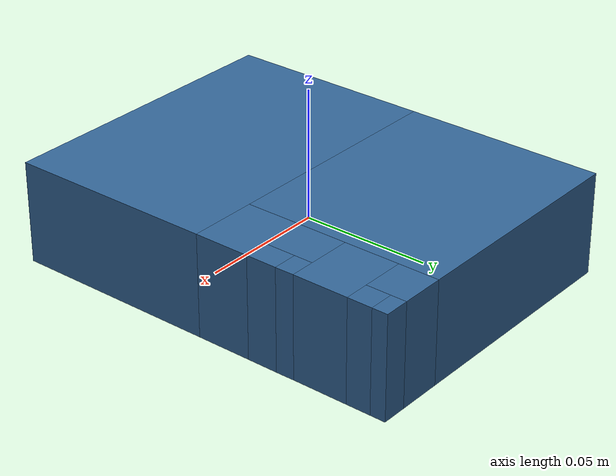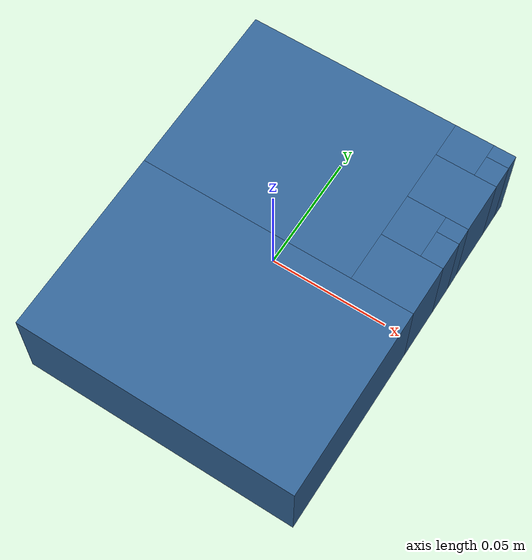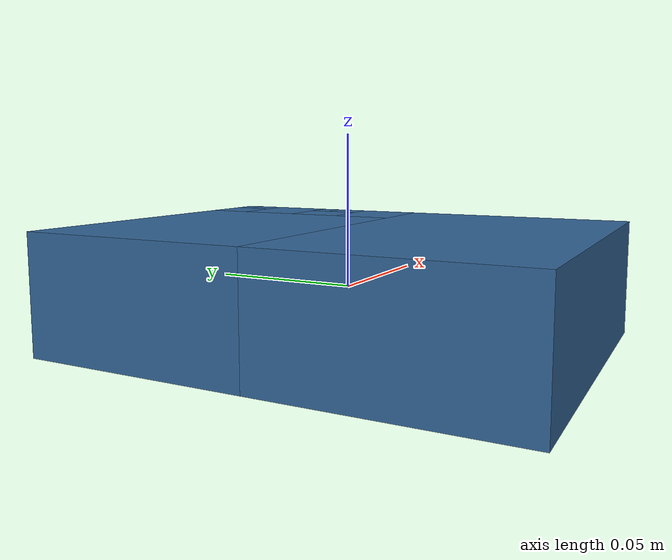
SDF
<?xml version='1.0' encoding='UTF-8'?>
<!-- This SDF was autogenerated by obj_to_drake_sdf.py -->
<sdf version="1.7">
  <model name="block">
    <link name="block">
      <inertial>
        <pose>0 0 0 0 0 0</pose>
        <mass>0.2</mass>
        <inertia>
          <ixx>0.00045332916</ixx>
          <iyy>0.00026666038</iyy>
          <izz>0.00066665621</izz>
          <ixy>-4.7469485e-09</ixy>
          <ixz>6.8932795e-21</ixz>
          <iyz>-0</iyz>
        </inertia>
      </inertial>
      <visual name="convex_0">
        <pose>0 0 0 0 0 0</pose>
        <geometry>
          <mesh>
            <uri>block_convex_0.obj</uri>
          </mesh>
        </geometry>
        <material>
          <diffuse>0.19607843137254902 0.39215686274509803 0.5882352941176471 1</diffuse>
        </material>
      </visual>
      <collision name="convex_0_volume">
        <pose>0 0 0 0 0 0</pose>
        <geometry>
          <mesh>
            <uri>block_convex_0.obj</uri>
          </mesh>
        </geometry>
        <drake:proximity_properties xmlns:drake="uri:drake">
          <drake:compliant_hydroelastic/>
          <drake:hydroelastic_modulus> 3.0e7 </drake:hydroelastic_modulus>
          <drake:mesh_resolution_hint> 0.02 </drake:mesh_resolution_hint>
          <drake:hunt_crossley_dissipation>10</drake:hunt_crossley_dissipation>
          <drake:mu_dynamic>0.3</drake:mu_dynamic>
        </drake:proximity_properties>
      </collision>
      <visual name="convex_1">
        <pose>0 0 0 0 0 0</pose>
        <geometry>
          <mesh>
            <uri>block_convex_1.obj</uri>
          </mesh>
        </geometry>
        <material>
          <diffuse>0.19607843137254902 0.39215686274509803 0.5882352941176471 1</diffuse>
        </material>
      </visual>
      <collision name="convex_1_volume">
        <pose>0 0 0 0 0 0</pose>
        <geometry>
          <mesh>
            <uri>block_convex_1.obj</uri>
          </mesh>
        </geometry>
        <drake:proximity_properties xmlns:drake="uri:drake">
          <drake:compliant_hydroelastic/>
          <drake:hydroelastic_modulus> 3.0e7 </drake:hydroelastic_modulus>
          <drake:mesh_resolution_hint> 0.02 </drake:mesh_resolution_hint>
          <drake:hunt_crossley_dissipation>10</drake:hunt_crossley_dissipation>
          <drake:mu_dynamic>0.3</drake:mu_dynamic>
        </drake:proximity_properties>
      </collision>
      <visual name="convex_2">
        <pose>0 0 0 0 0 0</pose>
        <geometry>
          <mesh>
            <uri>block_convex_2.obj</uri>
          </mesh>
        </geometry>
        <material>
          <diffuse>0.19607843137254902 0.39215686274509803 0.5882352941176471 1</diffuse>
        </material>
      </visual>
      <collision name="convex_2_volume">
        <pose>0 0 0 0 0 0</pose>
        <geometry>
          <mesh>
            <uri>block_convex_2.obj</uri>
          </mesh>
        </geometry>
        <drake:proximity_properties xmlns:drake="uri:drake">
          <drake:compliant_hydroelastic/>
          <drake:hydroelastic_modulus> 3.0e7 </drake:hydroelastic_modulus>
          <drake:mesh_resolution_hint> 0.02 </drake:mesh_resolution_hint>
          <drake:hunt_crossley_dissipation>10</drake:hunt_crossley_dissipation>
          <drake:mu_dynamic>0.3</drake:mu_dynamic>
        </drake:proximity_properties>
      </collision>
      <visual name="convex_3">
        <pose>0 0 0 0 0 0</pose>
        <geometry>
          <mesh>
            <uri>block_convex_3.obj</uri>
          </mesh>
        </geometry>
        <material>
          <diffuse>0.19607843137254902 0.39215686274509803 0.5882352941176471 1</diffuse>
        </material>
      </visual>
      <collision name="convex_3_volume">
        <pose>0 0 0 0 0 0</pose>
        <geometry>
          <mesh>
            <uri>block_convex_3.obj</uri>
          </mesh>
        </geometry>
        <drake:proximity_properties xmlns:drake="uri:drake">
          <drake:compliant_hydroelastic/>
          <drake:hydroelastic_modulus> 3.0e7 </drake:hydroelastic_modulus>
          <drake:mesh_resolution_hint> 0.02 </drake:mesh_resolution_hint>
          <drake:hunt_crossley_dissipation>10</drake:hunt_crossley_dissipation>
          <drake:mu_dynamic>0.3</drake:mu_dynamic>
        </drake:proximity_properties>
      </collision>
      <visual name="convex_4">
        <pose>0 0 0 0 0 0</pose>
        <geometry>
          <mesh>
            <uri>block_convex_4.obj</uri>
          </mesh>
        </geometry>
        <material>
          <diffuse>0.19607843137254902 0.39215686274509803 0.5882352941176471 1</diffuse>
        </material>
      </visual>
      <collision name="convex_4_volume">
        <pose>0 0 0 0 0 0</pose>
        <geometry>
          <mesh>
            <uri>block_convex_4.obj</uri>
          </mesh>
        </geometry>
        <drake:proximity_properties xmlns:drake="uri:drake">
          <drake:compliant_hydroelastic/>
          <drake:hydroelastic_modulus> 3.0e7 </drake:hydroelastic_modulus>
          <drake:mesh_resolution_hint> 0.02 </drake:mesh_resolution_hint>
          <drake:hunt_crossley_dissipation>10</drake:hunt_crossley_dissipation>
          <drake:mu_dynamic>0.3</drake:mu_dynamic>
        </drake:proximity_properties>
      </collision>
      <visual name="convex_5">
        <pose>0 0 0 0 0 0</pose>
        <geometry>
          <mesh>
            <uri>block_convex_5.obj</uri>
          </mesh>
        </geometry>
        <material>
          <diffuse>0.19607843137254902 0.39215686274509803 0.5882352941176471 1</diffuse>
        </material>
      </visual>
      <collision name="convex_5_volume">
        <pose>0 0 0 0 0 0</pose>
        <geometry>
          <mesh>
            <uri>block_convex_5.obj</uri>
          </mesh>
        </geometry>
        <drake:proximity_properties xmlns:drake="uri:drake">
          <drake:compliant_hydroelastic/>
          <drake:hydroelastic_modulus> 3.0e7 </drake:hydroelastic_modulus>
          <drake:mesh_resolution_hint> 0.02 </drake:mesh_resolution_hint>
          <drake:hunt_crossley_dissipation>10</drake:hunt_crossley_dissipation>
          <drake:mu_dynamic>0.3</drake:mu_dynamic>
        </drake:proximity_properties>
      </collision>
      <visual name="convex_6">
        <pose>0 0 0 0 0 0</pose>
        <geometry>
          <mesh>
            <uri>block_convex_6.obj</uri>
          </mesh>
        </geometry>
        <material>
          <diffuse>0.19607843137254902 0.39215686274509803 0.5882352941176471 1</diffuse>
        </material>
      </visual>
      <collision name="convex_6_volume">
        <pose>0 0 0 0 0 0</pose>
        <geometry>
          <mesh>
            <uri>block_convex_6.obj</uri>
          </mesh>
        </geometry>
        <drake:proximity_properties xmlns:drake="uri:drake">
          <drake:compliant_hydroelastic/>
          <drake:hydroelastic_modulus> 3.0e7 </drake:hydroelastic_modulus>
          <drake:mesh_resolution_hint> 0.02 </drake:mesh_resolution_hint>
          <drake:hunt_crossley_dissipation>10</drake:hunt_crossley_dissipation>
          <drake:mu_dynamic>0.3</drake:mu_dynamic>
        </drake:proximity_properties>
      </collision>
      <visual name="convex_7">
        <pose>0 0 0 0 0 0</pose>
        <geometry>
          <mesh>
            <uri>block_convex_7.obj</uri>
          </mesh>
        </geometry>
        <material>
          <diffuse>0.19607843137254902 0.39215686274509803 0.5882352941176471 1</diffuse>
        </material>
      </visual>
      <collision name="convex_7_volume">
        <pose>0 0 0 0 0 0</pose>
        <geometry>
          <mesh>
            <uri>block_convex_7.obj</uri>
          </mesh>
        </geometry>
        <drake:proximity_properties xmlns:drake="uri:drake">
          <drake:compliant_hydroelastic/>
          <drake:hydroelastic_modulus> 3.0e7 </drake:hydroelastic_modulus>
          <drake:mesh_resolution_hint> 0.02 </drake:mesh_resolution_hint>
          <drake:hunt_crossley_dissipation>10</drake:hunt_crossley_dissipation>
          <drake:mu_dynamic>0.3</drake:mu_dynamic>
        </drake:proximity_properties>
      </collision>
      <visual name="convex_8">
        <pose>0 0 0 0 0 0</pose>
        <geometry>
          <mesh>
            <uri>block_convex_8.obj</uri>
          </mesh>
        </geometry>
        <material>
          <diffuse>0.19607843137254902 0.39215686274509803 0.5882352941176471 1</diffuse>
        </material>
      </visual>
      <collision name="convex_8_volume">
        <pose>0 0 0 0 0 0</pose>
        <geometry>
          <mesh>
            <uri>block_convex_8.obj</uri>
          </mesh>
        </geometry>
        <drake:proximity_properties xmlns:drake="uri:drake">
          <drake:compliant_hydroelastic/>
          <drake:hydroelastic_modulus> 3.0e7 </drake:hydroelastic_modulus>
          <drake:mesh_resolution_hint> 0.02 </drake:mesh_resolution_hint>
          <drake:hunt_crossley_dissipation>10</drake:hunt_crossley_dissipation>
          <drake:mu_dynamic>0.3</drake:mu_dynamic>
        </drake:proximity_properties>
      </collision>
      <visual name="convex_9">
        <pose>0 0 0 0 0 0</pose>
        <geometry>
          <mesh>
            <uri>block_convex_9.obj</uri>
          </mesh>
        </geometry>
        <material>
          <diffuse>0.19607843137254902 0.39215686274509803 0.5882352941176471 1</diffuse>
        </material>
      </visual>
      <collision name="convex_9_volume">
        <pose>0 0 0 0 0 0</pose>
        <geometry>
          <mesh>
            <uri>block_convex_9.obj</uri>
          </mesh>
        </geometry>
        <drake:proximity_properties xmlns:drake="uri:drake">
          <drake:compliant_hydroelastic/>
          <drake:hydroelastic_modulus> 3.0e7 </drake:hydroelastic_modulus>
          <drake:mesh_resolution_hint> 0.02 </drake:mesh_resolution_hint>
          <drake:hunt_crossley_dissipation>10</drake:hunt_crossley_dissipation>
          <drake:mu_dynamic>0.3</drake:mu_dynamic>
        </drake:proximity_properties>
      </collision>
    </link>
  </model>
</sdf>
